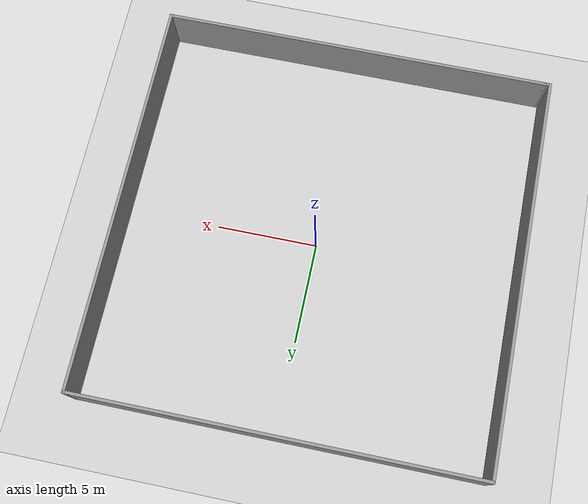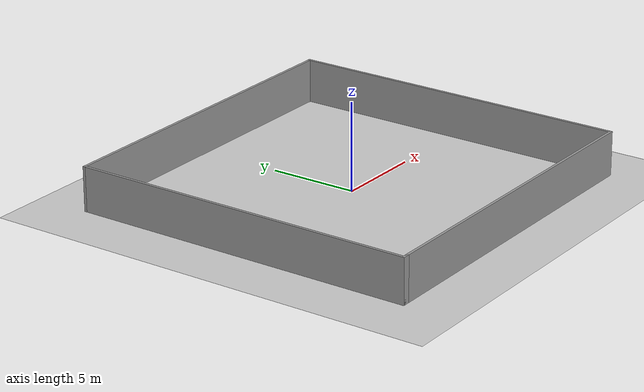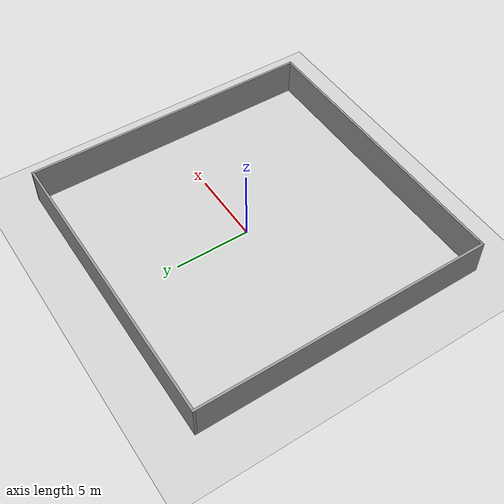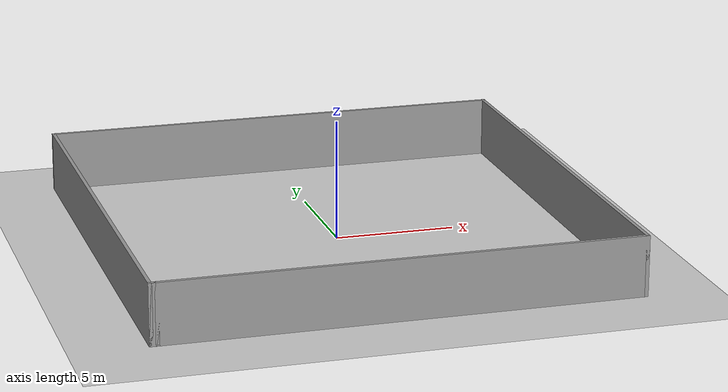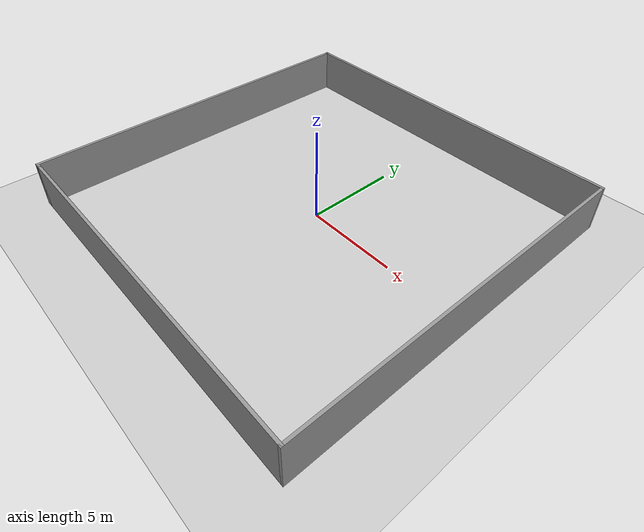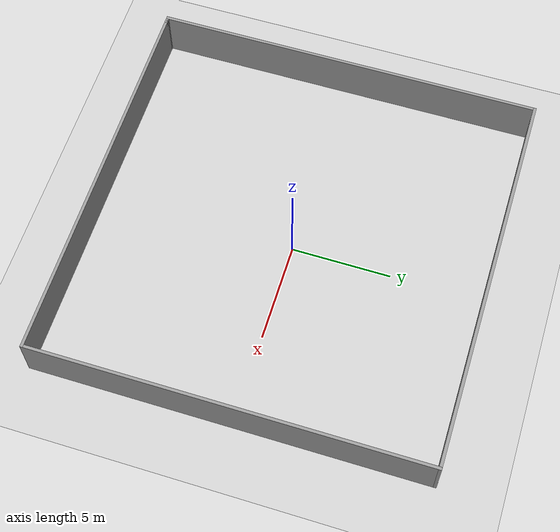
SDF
<?xml version="1.0"?>
<sdf version="1.6">
  <world name="default">

  <model name="ground_plane">
    <static>1</static>
    <link name="link">
        <collision name="collision">
            <geometry>
                <plane>
                    <normal>0 0 1</normal>
                    <size>100 100</size>
                </plane>
            </geometry>
            <surface>
                <contact>
                    <collide_bitmask>65535</collide_bitmask>
                </contact>
                <friction>
                    <ode>
                        <mu>100</mu>
                        <mu2>50</mu2>
                    </ode>
                </friction>
                <bounce/>
            </surface>
            <max_contacts>10</max_contacts>
        </collision>
        <visual name="visual">
            <cast_shadows>0</cast_shadows>
            <geometry>
                <plane>
                    <normal>0 0 1</normal>
                    <size>100 100</size>
                </plane>
            </geometry>
        </visual>
        <self_collide>0</self_collide>
        <enable_wind>0</enable_wind>
        <kinematic>0</kinematic>
    </link>
</model>

    <include>
      <uri>model://sun</uri>
    </include>

    <scene>
      <shadows>false</shadows>
    </scene>

    <gui fullscreen='0'>
      <camera name='user_camera'>
        <pose frame=''>8.0 -21.0 16.0 0 0.68 1.9</pose>
        <view_controller>orbit</view_controller>
        <projection_type>perspective</projection_type>
      </camera>
    </gui>

    <physics type="ode">
      <real_time_update_rate>50</real_time_update_rate>
      <max_step_size>0.020</max_step_size>
      <real_time_factor>1</real_time_factor>
      <ode>
        <solver>
          <type>quick</type>
          <iters>150</iters>
          <precon_iters>0</precon_iters>
          <sor>1.400000</sor>
          <use_dynamic_moi_rescaling>1</use_dynamic_moi_rescaling>
        </solver>
        <constraints>
          <cfm>0.00001</cfm>
          <erp>0.2</erp>
          <contact_max_correcting_vel>2000.000000</contact_max_correcting_vel>
          <contact_surface_layer>0.01000</contact_surface_layer>
        </constraints>
      </ode>
    </physics>

  <model name='Untitled'>
    <pose>-0.167142 -0.122396 0 0 -0 0</pose>
    <link name='Wall_3'>
      <collision name='Wall_3_Collision'>
        <geometry>
          <box>
            <size>19.5 0.15 2.5</size>
          </box>
        </geometry>
        <pose>0 0 1.25 0 -0 0</pose>
      </collision>
      <visual name='Wall_3_Visual'>
        <pose>0 0 1.25 0 -0 0</pose>
        <geometry>
          <box>
            <size>19.5 0.15 2.5</size>
          </box>
        </geometry>
        <material>
          <script>
            <uri>file://media/materials/scripts/gazebo.material</uri>
            <name>Gazebo/Grey</name>
          </script>
          <ambient>1 1 1 1</ambient>
        </material>
        <meta>
          <layer>0</layer>
        </meta>
      </visual>
      <pose>0.125 -9.8 0 0 -0 0</pose>
    </link>
    <link name='Wall_4'>
      <collision name='Wall_4_Collision'>
        <geometry>
          <box>
            <size>19.75 0.15 2.5</size>
          </box>
        </geometry>
        <pose>0 0 1.25 0 -0 0</pose>
      </collision>
      <visual name='Wall_4_Visual'>
        <pose>0 0 1.25 0 -0 0</pose>
        <geometry>
          <box>
            <size>19.75 0.15 2.5</size>
          </box>
        </geometry>
        <material>
          <script>
            <uri>file://media/materials/scripts/gazebo.material</uri>
            <name>Gazebo/Grey</name>
          </script>
          <ambient>1 1 1 1</ambient>
        </material>
        <meta>
          <layer>0</layer>
        </meta>
      </visual>
      <pose>9.8 0 0 0 -0 1.5708</pose>
    </link>
    <link name='Wall_5'>
      <collision name='Wall_5_Collision'>
        <geometry>
          <box>
            <size>19.75 0.15 2.5</size>
          </box>
        </geometry>
        <pose>0 0 1.25 0 -0 0</pose>
      </collision>
      <visual name='Wall_5_Visual'>
        <pose>0 0 1.25 0 -0 0</pose>
        <geometry>
          <box>
            <size>19.75 0.15 2.5</size>
          </box>
        </geometry>
        <material>
          <script>
            <uri>file://media/materials/scripts/gazebo.material</uri>
            <name>Gazebo/Grey</name>
          </script>
          <ambient>1 1 1 1</ambient>
        </material>
        <meta>
          <layer>0</layer>
        </meta>
      </visual>
      <pose>0 9.8 0 0 -0 3.14159</pose>
    </link>
    <link name='Wall_6'>
      <collision name='Wall_6_Collision'>
        <geometry>
          <box>
            <size>19.75 0.15 2.5</size>
          </box>
        </geometry>
        <pose>0 0 1.25 0 -0 0</pose>
      </collision>
      <visual name='Wall_6_Visual'>
        <pose>0 0 1.25 0 -0 0</pose>
        <geometry>
          <box>
            <size>19.75 0.15 2.5</size>
          </box>
        </geometry>
        <material>
          <script>
            <uri>file://media/materials/scripts/gazebo.material</uri>
            <name>Gazebo/Grey</name>
          </script>
          <ambient>1 1 1 1</ambient>
        </material>
        <meta>
          <layer>0</layer>
        </meta>
      </visual>
      <pose>-9.8 0 0 0 -0 -1.5708</pose>
    </link>
    <link name='Wall_7'>
      <collision name='Wall_7_Collision'>
        <geometry>
          <box>
            <size>0.4 0.15 2.5</size>
          </box>
        </geometry>
        <pose>0 0 1.25 0 -0 0</pose>
      </collision>
      <visual name='Wall_7_Visual'>
        <pose>0 0 1.25 0 -0 0</pose>
        <geometry>
          <box>
            <size>0.4 0.15 2.5</size>
          </box>
        </geometry>
        <material>
          <script>
            <uri>file://media/materials/scripts/gazebo.material</uri>
            <name>Gazebo/Grey</name>
          </script>
          <ambient>1 1 1 1</ambient>
        </material>
        <meta>
          <layer>0</layer>
        </meta>
      </visual>
      <pose>-9.675 -9.8 0 0 -0 0</pose>
    </link>
    <static>1</static>
  </model>

  </world>
</sdf>
